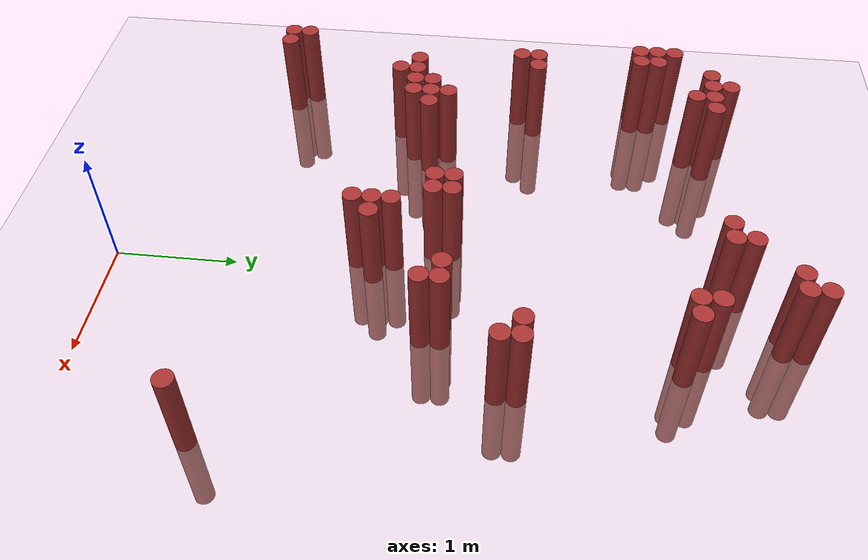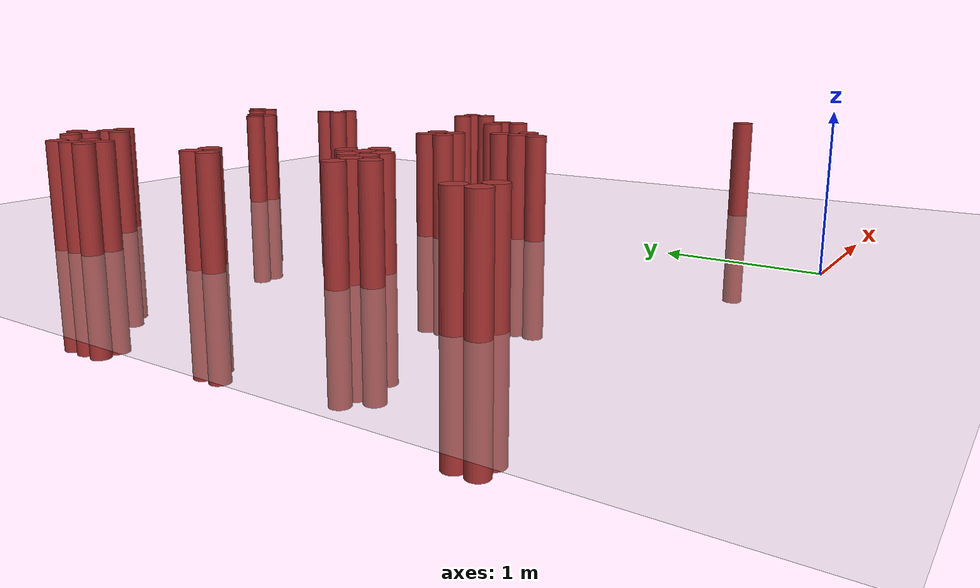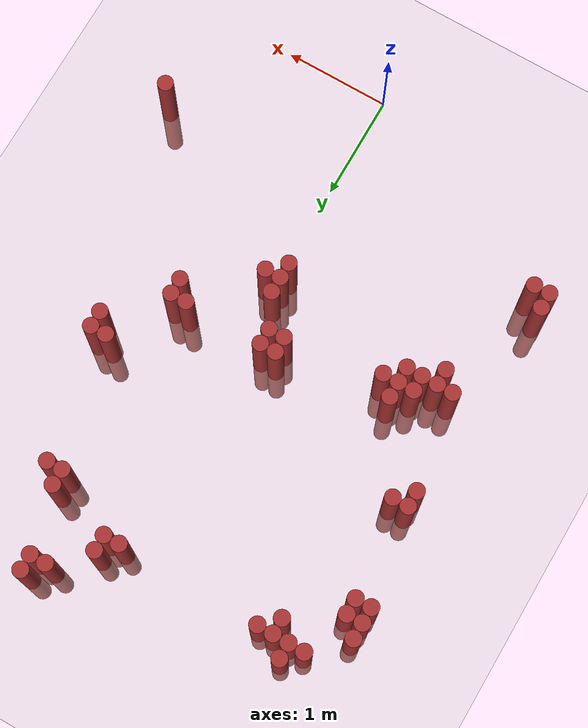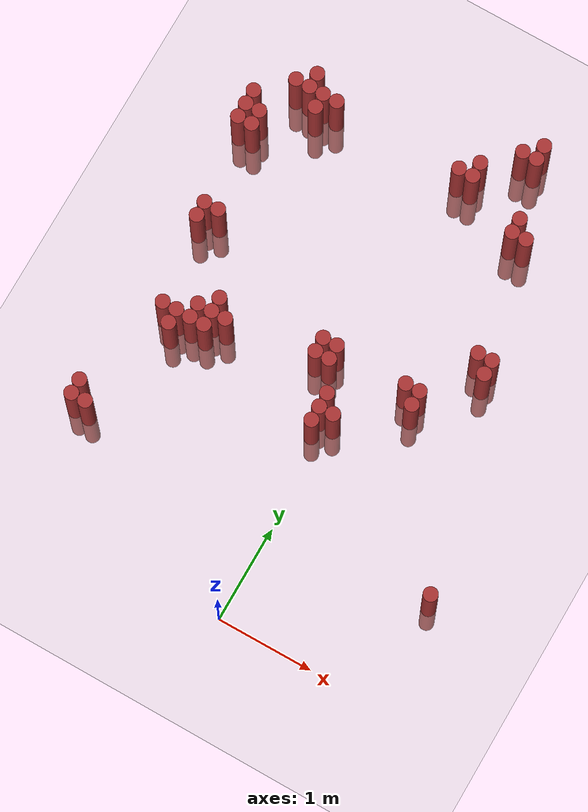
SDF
<sdf version="1.6">
 <world name="default">
  <model name="ground_plane">
   <static>1</static>
   <link name="link">
    <collision name="collision">
     <geometry><plane><normal>0 0 1</normal><size>100 100</size></plane></geometry>
     <surface><friction><ode><mu>100</mu><mu2>50</mu2></ode></friction></surface>
    </collision>
    <visual name="visual">
     <cast_shadows>0</cast_shadows>
     <geometry><plane><normal>0 0 1</normal><size>100 100</size></plane></geometry>
     <material>
      <script><uri>file://media/materials/scripts/gazebo.material</uri><name>Gazebo/Grey</name></script>
     </material>
    </visual>
   </link>
  </model>
  <model name="unit_cylinder_303">
   <static>1</static>
   <pose>-2.225000 1.075000 0.000000 0.000000 0.000000 0.000000</pose>
   <link name="link">
    <inertial>
     <mass>1</mass>
     <inertia><ixx>0.145833</ixx><ixy>0</ixy><ixz>0</ixz><iyy>0.145833</iyy><iyz>0</iyz><izz>0.125</izz></inertia>
    </inertial>
    <collision name="collision">
     <geometry><cylinder><radius>0.075000</radius><length>1.5</length></cylinder></geometry>
    </collision>
    <visual name="visual">
     <geometry><cylinder><radius>0.075000</radius><length>1.5</length></cylinder></geometry>
     <material>
      <ambient>0.648000 0.192000 0.192000 1</ambient>
      <diffuse>0.648000 0.192000 0.192000 1</diffuse>
     </material>
     <material>
      <script><name>Gazebo/Grey</name><uri>file://media/materials/scripts/gazebo.material</uri></script>
     </material>
    </visual>
   </link>
  </model>
  <model name="unit_cylinder_304">
   <static>1</static>
   <pose>-2.225000 1.225000 0.000000 0.000000 0.000000 0.000000</pose>
   <link name="link">
    <inertial>
     <mass>1</mass>
     <inertia><ixx>0.145833</ixx><ixy>0</ixy><ixz>0</ixz><iyy>0.145833</iyy><iyz>0</iyz><izz>0.125</izz></inertia>
    </inertial>
    <collision name="collision">
     <geometry><cylinder><radius>0.075000</radius><length>1.5</length></cylinder></geometry>
    </collision>
    <visual name="visual">
     <geometry><cylinder><radius>0.075000</radius><length>1.5</length></cylinder></geometry>
     <material>
      <ambient>0.648000 0.192000 0.192000 1</ambient>
      <diffuse>0.648000 0.192000 0.192000 1</diffuse>
     </material>
     <material>
      <script><name>Gazebo/Grey</name><uri>file://media/materials/scripts/gazebo.material</uri></script>
     </material>
    </visual>
   </link>
  </model>
  <model name="unit_cylinder_305">
   <static>1</static>
   <pose>-2.225000 4.225000 0.000000 0.000000 0.000000 0.000000</pose>
   <link name="link">
    <inertial>
     <mass>1</mass>
     <inertia><ixx>0.145833</ixx><ixy>0</ixy><ixz>0</ixz><iyy>0.145833</iyy><iyz>0</iyz><izz>0.125</izz></inertia>
    </inertial>
    <collision name="collision">
     <geometry><cylinder><radius>0.075000</radius><length>1.5</length></cylinder></geometry>
    </collision>
    <visual name="visual">
     <geometry><cylinder><radius>0.075000</radius><length>1.5</length></cylinder></geometry>
     <material>
      <ambient>0.648000 0.192000 0.192000 1</ambient>
      <diffuse>0.648000 0.192000 0.192000 1</diffuse>
     </material>
     <material>
      <script><name>Gazebo/Grey</name><uri>file://media/materials/scripts/gazebo.material</uri></script>
     </material>
    </visual>
   </link>
  </model>
  <model name="unit_cylinder_306">
   <static>1</static>
   <pose>-2.225000 4.375000 0.000000 0.000000 0.000000 0.000000</pose>
   <link name="link">
    <inertial>
     <mass>1</mass>
     <inertia><ixx>0.145833</ixx><ixy>0</ixy><ixz>0</ixz><iyy>0.145833</iyy><iyz>0</iyz><izz>0.125</izz></inertia>
    </inertial>
    <collision name="collision">
     <geometry><cylinder><radius>0.075000</radius><length>1.5</length></cylinder></geometry>
    </collision>
    <visual name="visual">
     <geometry><cylinder><radius>0.075000</radius><length>1.5</length></cylinder></geometry>
     <material>
      <ambient>0.648000 0.192000 0.192000 1</ambient>
      <diffuse>0.648000 0.192000 0.192000 1</diffuse>
     </material>
     <material>
      <script><name>Gazebo/Grey</name><uri>file://media/materials/scripts/gazebo.material</uri></script>
     </material>
    </visual>
   </link>
  </model>
  <model name="unit_cylinder_307">
   <static>1</static>
   <pose>-2.225000 4.525000 0.000000 0.000000 0.000000 0.000000</pose>
   <link name="link">
    <inertial>
     <mass>1</mass>
     <inertia><ixx>0.145833</ixx><ixy>0</ixy><ixz>0</ixz><iyy>0.145833</iyy><iyz>0</iyz><izz>0.125</izz></inertia>
    </inertial>
    <collision name="collision">
     <geometry><cylinder><radius>0.075000</radius><length>1.5</length></cylinder></geometry>
    </collision>
    <visual name="visual">
     <geometry><cylinder><radius>0.075000</radius><length>1.5</length></cylinder></geometry>
     <material>
      <ambient>0.648000 0.192000 0.192000 1</ambient>
      <diffuse>0.648000 0.192000 0.192000 1</diffuse>
     </material>
     <material>
      <script><name>Gazebo/Grey</name><uri>file://media/materials/scripts/gazebo.material</uri></script>
     </material>
    </visual>
   </link>
  </model>
  <model name="unit_cylinder_309">
   <static>1</static>
   <pose>-2.075000 1.075000 0.000000 0.000000 0.000000 0.000000</pose>
   <link name="link">
    <inertial>
     <mass>1</mass>
     <inertia><ixx>0.145833</ixx><ixy>0</ixy><ixz>0</ixz><iyy>0.145833</iyy><iyz>0</iyz><izz>0.125</izz></inertia>
    </inertial>
    <collision name="collision">
     <geometry><cylinder><radius>0.075000</radius><length>1.5</length></cylinder></geometry>
    </collision>
    <visual name="visual">
     <geometry><cylinder><radius>0.075000</radius><length>1.5</length></cylinder></geometry>
     <material>
      <ambient>0.648000 0.192000 0.192000 1</ambient>
      <diffuse>0.648000 0.192000 0.192000 1</diffuse>
     </material>
     <material>
      <script><name>Gazebo/Grey</name><uri>file://media/materials/scripts/gazebo.material</uri></script>
     </material>
    </visual>
   </link>
  </model>
  <model name="unit_cylinder_310">
   <static>1</static>
   <pose>-2.075000 3.175000 0.000000 0.000000 0.000000 0.000000</pose>
   <link name="link">
    <inertial>
     <mass>1</mass>
     <inertia><ixx>0.145833</ixx><ixy>0</ixy><ixz>0</ixz><iyy>0.145833</iyy><iyz>0</iyz><izz>0.125</izz></inertia>
    </inertial>
    <collision name="collision">
     <geometry><cylinder><radius>0.075000</radius><length>1.5</length></cylinder></geometry>
    </collision>
    <visual name="visual">
     <geometry><cylinder><radius>0.075000</radius><length>1.5</length></cylinder></geometry>
     <material>
      <ambient>0.648000 0.192000 0.192000 1</ambient>
      <diffuse>0.648000 0.192000 0.192000 1</diffuse>
     </material>
     <material>
      <script><name>Gazebo/Grey</name><uri>file://media/materials/scripts/gazebo.material</uri></script>
     </material>
    </visual>
   </link>
  </model>
  <model name="unit_cylinder_311">
   <static>1</static>
   <pose>-2.075000 3.325000 0.000000 0.000000 0.000000 0.000000</pose>
   <link name="link">
    <inertial>
     <mass>1</mass>
     <inertia><ixx>0.145833</ixx><ixy>0</ixy><ixz>0</ixz><iyy>0.145833</iyy><iyz>0</iyz><izz>0.125</izz></inertia>
    </inertial>
    <collision name="collision">
     <geometry><cylinder><radius>0.075000</radius><length>1.5</length></cylinder></geometry>
    </collision>
    <visual name="visual">
     <geometry><cylinder><radius>0.075000</radius><length>1.5</length></cylinder></geometry>
     <material>
      <ambient>0.648000 0.192000 0.192000 1</ambient>
      <diffuse>0.648000 0.192000 0.192000 1</diffuse>
     </material>
     <material>
      <script><name>Gazebo/Grey</name><uri>file://media/materials/scripts/gazebo.material</uri></script>
     </material>
    </visual>
   </link>
  </model>
  <model name="unit_cylinder_312">
   <static>1</static>
   <pose>-2.075000 4.225000 0.000000 0.000000 0.000000 0.000000</pose>
   <link name="link">
    <inertial>
     <mass>1</mass>
     <inertia><ixx>0.145833</ixx><ixy>0</ixy><ixz>0</ixz><iyy>0.145833</iyy><iyz>0</iyz><izz>0.125</izz></inertia>
    </inertial>
    <collision name="collision">
     <geometry><cylinder><radius>0.075000</radius><length>1.5</length></cylinder></geometry>
    </collision>
    <visual name="visual">
     <geometry><cylinder><radius>0.075000</radius><length>1.5</length></cylinder></geometry>
     <material>
      <ambient>0.648000 0.192000 0.192000 1</ambient>
      <diffuse>0.648000 0.192000 0.192000 1</diffuse>
     </material>
     <material>
      <script><name>Gazebo/Grey</name><uri>file://media/materials/scripts/gazebo.material</uri></script>
     </material>
    </visual>
   </link>
  </model>
  <model name="unit_cylinder_313">
   <static>1</static>
   <pose>-2.075000 4.375000 0.000000 0.000000 0.000000 0.000000</pose>
   <link name="link">
    <inertial>
     <mass>1</mass>
     <inertia><ixx>0.145833</ixx><ixy>0</ixy><ixz>0</ixz><iyy>0.145833</iyy><iyz>0</iyz><izz>0.125</izz></inertia>
    </inertial>
    <collision name="collision">
     <geometry><cylinder><radius>0.075000</radius><length>1.5</length></cylinder></geometry>
    </collision>
    <visual name="visual">
     <geometry><cylinder><radius>0.075000</radius><length>1.5</length></cylinder></geometry>
     <material>
      <ambient>0.648000 0.192000 0.192000 1</ambient>
      <diffuse>0.648000 0.192000 0.192000 1</diffuse>
     </material>
     <material>
      <script><name>Gazebo/Grey</name><uri>file://media/materials/scripts/gazebo.material</uri></script>
     </material>
    </visual>
   </link>
  </model>
  <model name="unit_cylinder_319">
   <static>1</static>
   <pose>-1.925000 2.275000 0.000000 0.000000 0.000000 0.000000</pose>
   <link name="link">
    <inertial>
     <mass>1</mass>
     <inertia><ixx>0.145833</ixx><ixy>0</ixy><ixz>0</ixz><iyy>0.145833</iyy><iyz>0</iyz><izz>0.125</izz></inertia>
    </inertial>
    <collision name="collision">
     <geometry><cylinder><radius>0.075000</radius><length>1.5</length></cylinder></geometry>
    </collision>
    <visual name="visual">
     <geometry><cylinder><radius>0.075000</radius><length>1.5</length></cylinder></geometry>
     <material>
      <ambient>0.648000 0.192000 0.192000 1</ambient>
      <diffuse>0.648000 0.192000 0.192000 1</diffuse>
     </material>
     <material>
      <script><name>Gazebo/Grey</name><uri>file://media/materials/scripts/gazebo.material</uri></script>
     </material>
    </visual>
   </link>
  </model>
  <model name="unit_cylinder_320">
   <static>1</static>
   <pose>-1.925000 3.325000 0.000000 0.000000 0.000000 0.000000</pose>
   <link name="link">
    <inertial>
     <mass>1</mass>
     <inertia><ixx>0.145833</ixx><ixy>0</ixy><ixz>0</ixz><iyy>0.145833</iyy><iyz>0</iyz><izz>0.125</izz></inertia>
    </inertial>
    <collision name="collision">
     <geometry><cylinder><radius>0.075000</radius><length>1.5</length></cylinder></geometry>
    </collision>
    <visual name="visual">
     <geometry><cylinder><radius>0.075000</radius><length>1.5</length></cylinder></geometry>
     <material>
      <ambient>0.648000 0.192000 0.192000 1</ambient>
      <diffuse>0.648000 0.192000 0.192000 1</diffuse>
     </material>
     <material>
      <script><name>Gazebo/Grey</name><uri>file://media/materials/scripts/gazebo.material</uri></script>
     </material>
    </visual>
   </link>
  </model>
  <model name="unit_cylinder_321">
   <static>1</static>
   <pose>-1.925000 4.825000 0.000000 0.000000 0.000000 0.000000</pose>
   <link name="link">
    <inertial>
     <mass>1</mass>
     <inertia><ixx>0.145833</ixx><ixy>0</ixy><ixz>0</ixz><iyy>0.145833</iyy><iyz>0</iyz><izz>0.125</izz></inertia>
    </inertial>
    <collision name="collision">
     <geometry><cylinder><radius>0.075000</radius><length>1.5</length></cylinder></geometry>
    </collision>
    <visual name="visual">
     <geometry><cylinder><radius>0.075000</radius><length>1.5</length></cylinder></geometry>
     <material>
      <ambient>0.648000 0.192000 0.192000 1</ambient>
      <diffuse>0.648000 0.192000 0.192000 1</diffuse>
     </material>
     <material>
      <script><name>Gazebo/Grey</name><uri>file://media/materials/scripts/gazebo.material</uri></script>
     </material>
    </visual>
   </link>
  </model>
  <model name="unit_cylinder_326">
   <static>1</static>
   <pose>-1.775000 2.125000 0.000000 0.000000 0.000000 0.000000</pose>
   <link name="link">
    <inertial>
     <mass>1</mass>
     <inertia><ixx>0.145833</ixx><ixy>0</ixy><ixz>0</ixz><iyy>0.145833</iyy><iyz>0</iyz><izz>0.125</izz></inertia>
    </inertial>
    <collision name="collision">
     <geometry><cylinder><radius>0.075000</radius><length>1.5</length></cylinder></geometry>
    </collision>
    <visual name="visual">
     <geometry><cylinder><radius>0.075000</radius><length>1.5</length></cylinder></geometry>
     <material>
      <ambient>0.648000 0.192000 0.192000 1</ambient>
      <diffuse>0.648000 0.192000 0.192000 1</diffuse>
     </material>
     <material>
      <script><name>Gazebo/Grey</name><uri>file://media/materials/scripts/gazebo.material</uri></script>
     </material>
    </visual>
   </link>
  </model>
  <model name="unit_cylinder_327">
   <static>1</static>
   <pose>-1.775000 2.275000 0.000000 0.000000 0.000000 0.000000</pose>
   <link name="link">
    <inertial>
     <mass>1</mass>
     <inertia><ixx>0.145833</ixx><ixy>0</ixy><ixz>0</ixz><iyy>0.145833</iyy><iyz>0</iyz><izz>0.125</izz></inertia>
    </inertial>
    <collision name="collision">
     <geometry><cylinder><radius>0.075000</radius><length>1.5</length></cylinder></geometry>
    </collision>
    <visual name="visual">
     <geometry><cylinder><radius>0.075000</radius><length>1.5</length></cylinder></geometry>
     <material>
      <ambient>0.648000 0.192000 0.192000 1</ambient>
      <diffuse>0.648000 0.192000 0.192000 1</diffuse>
     </material>
     <material>
      <script><name>Gazebo/Grey</name><uri>file://media/materials/scripts/gazebo.material</uri></script>
     </material>
    </visual>
   </link>
  </model>
  <model name="unit_cylinder_328">
   <static>1</static>
   <pose>-1.775000 4.825000 0.000000 0.000000 0.000000 0.000000</pose>
   <link name="link">
    <inertial>
     <mass>1</mass>
     <inertia><ixx>0.145833</ixx><ixy>0</ixy><ixz>0</ixz><iyy>0.145833</iyy><iyz>0</iyz><izz>0.125</izz></inertia>
    </inertial>
    <collision name="collision">
     <geometry><cylinder><radius>0.075000</radius><length>1.5</length></cylinder></geometry>
    </collision>
    <visual name="visual">
     <geometry><cylinder><radius>0.075000</radius><length>1.5</length></cylinder></geometry>
     <material>
      <ambient>0.648000 0.192000 0.192000 1</ambient>
      <diffuse>0.648000 0.192000 0.192000 1</diffuse>
     </material>
     <material>
      <script><name>Gazebo/Grey</name><uri>file://media/materials/scripts/gazebo.material</uri></script>
     </material>
    </visual>
   </link>
  </model>
  <model name="unit_cylinder_329">
   <static>1</static>
   <pose>-1.775000 4.975000 0.000000 0.000000 0.000000 0.000000</pose>
   <link name="link">
    <inertial>
     <mass>1</mass>
     <inertia><ixx>0.145833</ixx><ixy>0</ixy><ixz>0</ixz><iyy>0.145833</iyy><iyz>0</iyz><izz>0.125</izz></inertia>
    </inertial>
    <collision name="collision">
     <geometry><cylinder><radius>0.075000</radius><length>1.5</length></cylinder></geometry>
    </collision>
    <visual name="visual">
     <geometry><cylinder><radius>0.075000</radius><length>1.5</length></cylinder></geometry>
     <material>
      <ambient>0.648000 0.192000 0.192000 1</ambient>
      <diffuse>0.648000 0.192000 0.192000 1</diffuse>
     </material>
     <material>
      <script><name>Gazebo/Grey</name><uri>file://media/materials/scripts/gazebo.material</uri></script>
     </material>
    </visual>
   </link>
  </model>
  <model name="unit_cylinder_330">
   <static>1</static>
   <pose>-1.625000 2.275000 0.000000 0.000000 0.000000 0.000000</pose>
   <link name="link">
    <inertial>
     <mass>1</mass>
     <inertia><ixx>0.145833</ixx><ixy>0</ixy><ixz>0</ixz><iyy>0.145833</iyy><iyz>0</iyz><izz>0.125</izz></inertia>
    </inertial>
    <collision name="collision">
     <geometry><cylinder><radius>0.075000</radius><length>1.5</length></cylinder></geometry>
    </collision>
    <visual name="visual">
     <geometry><cylinder><radius>0.075000</radius><length>1.5</length></cylinder></geometry>
     <material>
      <ambient>0.648000 0.192000 0.192000 1</ambient>
      <diffuse>0.648000 0.192000 0.192000 1</diffuse>
     </material>
     <material>
      <script><name>Gazebo/Grey</name><uri>file://media/materials/scripts/gazebo.material</uri></script>
     </material>
    </visual>
   </link>
  </model>
  <model name="unit_cylinder_331">
   <static>1</static>
   <pose>-1.625000 2.425000 0.000000 0.000000 0.000000 0.000000</pose>
   <link name="link">
    <inertial>
     <mass>1</mass>
     <inertia><ixx>0.145833</ixx><ixy>0</ixy><ixz>0</ixz><iyy>0.145833</iyy><iyz>0</iyz><izz>0.125</izz></inertia>
    </inertial>
    <collision name="collision">
     <geometry><cylinder><radius>0.075000</radius><length>1.5</length></cylinder></geometry>
    </collision>
    <visual name="visual">
     <geometry><cylinder><radius>0.075000</radius><length>1.5</length></cylinder></geometry>
     <material>
      <ambient>0.648000 0.192000 0.192000 1</ambient>
      <diffuse>0.648000 0.192000 0.192000 1</diffuse>
     </material>
     <material>
      <script><name>Gazebo/Grey</name><uri>file://media/materials/scripts/gazebo.material</uri></script>
     </material>
    </visual>
   </link>
  </model>
  <model name="unit_cylinder_332">
   <static>1</static>
   <pose>-1.625000 4.675000 0.000000 0.000000 0.000000 0.000000</pose>
   <link name="link">
    <inertial>
     <mass>1</mass>
     <inertia><ixx>0.145833</ixx><ixy>0</ixy><ixz>0</ixz><iyy>0.145833</iyy><iyz>0</iyz><izz>0.125</izz></inertia>
    </inertial>
    <collision name="collision">
     <geometry><cylinder><radius>0.075000</radius><length>1.5</length></cylinder></geometry>
    </collision>
    <visual name="visual">
     <geometry><cylinder><radius>0.075000</radius><length>1.5</length></cylinder></geometry>
     <material>
      <ambient>0.648000 0.192000 0.192000 1</ambient>
      <diffuse>0.648000 0.192000 0.192000 1</diffuse>
     </material>
     <material>
      <script><name>Gazebo/Grey</name><uri>file://media/materials/scripts/gazebo.material</uri></script>
     </material>
    </visual>
   </link>
  </model>
  <model name="unit_cylinder_333">
   <static>1</static>
   <pose>-1.625000 4.825000 0.000000 0.000000 0.000000 0.000000</pose>
   <link name="link">
    <inertial>
     <mass>1</mass>
     <inertia><ixx>0.145833</ixx><ixy>0</ixy><ixz>0</ixz><iyy>0.145833</iyy><iyz>0</iyz><izz>0.125</izz></inertia>
    </inertial>
    <collision name="collision">
     <geometry><cylinder><radius>0.075000</radius><length>1.5</length></cylinder></geometry>
    </collision>
    <visual name="visual">
     <geometry><cylinder><radius>0.075000</radius><length>1.5</length></cylinder></geometry>
     <material>
      <ambient>0.648000 0.192000 0.192000 1</ambient>
      <diffuse>0.648000 0.192000 0.192000 1</diffuse>
     </material>
     <material>
      <script><name>Gazebo/Grey</name><uri>file://media/materials/scripts/gazebo.material</uri></script>
     </material>
    </visual>
   </link>
  </model>
  <model name="unit_cylinder_334">
   <static>1</static>
   <pose>-1.475000 2.275000 0.000000 0.000000 0.000000 0.000000</pose>
   <link name="link">
    <inertial>
     <mass>1</mass>
     <inertia><ixx>0.145833</ixx><ixy>0</ixy><ixz>0</ixz><iyy>0.145833</iyy><iyz>0</iyz><izz>0.125</izz></inertia>
    </inertial>
    <collision name="collision">
     <geometry><cylinder><radius>0.075000</radius><length>1.5</length></cylinder></geometry>
    </collision>
    <visual name="visual">
     <geometry><cylinder><radius>0.075000</radius><length>1.5</length></cylinder></geometry>
     <material>
      <ambient>0.648000 0.192000 0.192000 1</ambient>
      <diffuse>0.648000 0.192000 0.192000 1</diffuse>
     </material>
     <material>
      <script><name>Gazebo/Grey</name><uri>file://media/materials/scripts/gazebo.material</uri></script>
     </material>
    </visual>
   </link>
  </model>
  <model name="unit_cylinder_335">
   <static>1</static>
   <pose>-1.475000 2.425000 0.000000 0.000000 0.000000 0.000000</pose>
   <link name="link">
    <inertial>
     <mass>1</mass>
     <inertia><ixx>0.145833</ixx><ixy>0</ixy><ixz>0</ixz><iyy>0.145833</iyy><iyz>0</iyz><izz>0.125</izz></inertia>
    </inertial>
    <collision name="collision">
     <geometry><cylinder><radius>0.075000</radius><length>1.5</length></cylinder></geometry>
    </collision>
    <visual name="visual">
     <geometry><cylinder><radius>0.075000</radius><length>1.5</length></cylinder></geometry>
     <material>
      <ambient>0.648000 0.192000 0.192000 1</ambient>
      <diffuse>0.648000 0.192000 0.192000 1</diffuse>
     </material>
     <material>
      <script><name>Gazebo/Grey</name><uri>file://media/materials/scripts/gazebo.material</uri></script>
     </material>
    </visual>
   </link>
  </model>
  <model name="unit_cylinder_336">
   <static>1</static>
   <pose>-1.475000 2.575000 0.000000 0.000000 0.000000 0.000000</pose>
   <link name="link">
    <inertial>
     <mass>1</mass>
     <inertia><ixx>0.145833</ixx><ixy>0</ixy><ixz>0</ixz><iyy>0.145833</iyy><iyz>0</iyz><izz>0.125</izz></inertia>
    </inertial>
    <collision name="collision">
     <geometry><cylinder><radius>0.075000</radius><length>1.5</length></cylinder></geometry>
    </collision>
    <visual name="visual">
     <geometry><cylinder><radius>0.075000</radius><length>1.5</length></cylinder></geometry>
     <material>
      <ambient>0.648000 0.192000 0.192000 1</ambient>
      <diffuse>0.648000 0.192000 0.192000 1</diffuse>
     </material>
     <material>
      <script><name>Gazebo/Grey</name><uri>file://media/materials/scripts/gazebo.material</uri></script>
     </material>
    </visual>
   </link>
  </model>
  <model name="unit_cylinder_337">
   <static>1</static>
   <pose>-1.475000 4.825000 0.000000 0.000000 0.000000 0.000000</pose>
   <link name="link">
    <inertial>
     <mass>1</mass>
     <inertia><ixx>0.145833</ixx><ixy>0</ixy><ixz>0</ixz><iyy>0.145833</iyy><iyz>0</iyz><izz>0.125</izz></inertia>
    </inertial>
    <collision name="collision">
     <geometry><cylinder><radius>0.075000</radius><length>1.5</length></cylinder></geometry>
    </collision>
    <visual name="visual">
     <geometry><cylinder><radius>0.075000</radius><length>1.5</length></cylinder></geometry>
     <material>
      <ambient>0.648000 0.192000 0.192000 1</ambient>
      <diffuse>0.648000 0.192000 0.192000 1</diffuse>
     </material>
     <material>
      <script><name>Gazebo/Grey</name><uri>file://media/materials/scripts/gazebo.material</uri></script>
     </material>
    </visual>
   </link>
  </model>
  <model name="unit_cylinder_339">
   <static>1</static>
   <pose>-1.325000 2.425000 0.000000 0.000000 0.000000 0.000000</pose>
   <link name="link">
    <inertial>
     <mass>1</mass>
     <inertia><ixx>0.145833</ixx><ixy>0</ixy><ixz>0</ixz><iyy>0.145833</iyy><iyz>0</iyz><izz>0.125</izz></inertia>
    </inertial>
    <collision name="collision">
     <geometry><cylinder><radius>0.075000</radius><length>1.5</length></cylinder></geometry>
    </collision>
    <visual name="visual">
     <geometry><cylinder><radius>0.075000</radius><length>1.5</length></cylinder></geometry>
     <material>
      <ambient>0.648000 0.192000 0.192000 1</ambient>
      <diffuse>0.648000 0.192000 0.192000 1</diffuse>
     </material>
     <material>
      <script><name>Gazebo/Grey</name><uri>file://media/materials/scripts/gazebo.material</uri></script>
     </material>
    </visual>
   </link>
  </model>
  <model name="unit_cylinder_348">
   <static>1</static>
   <pose>-0.425000 2.575000 0.000000 0.000000 0.000000 0.000000</pose>
   <link name="link">
    <inertial>
     <mass>1</mass>
     <inertia><ixx>0.145833</ixx><ixy>0</ixy><ixz>0</ixz><iyy>0.145833</iyy><iyz>0</iyz><izz>0.125</izz></inertia>
    </inertial>
    <collision name="collision">
     <geometry><cylinder><radius>0.075000</radius><length>1.5</length></cylinder></geometry>
    </collision>
    <visual name="visual">
     <geometry><cylinder><radius>0.075000</radius><length>1.5</length></cylinder></geometry>
     <material>
      <ambient>0.648000 0.192000 0.192000 1</ambient>
      <diffuse>0.648000 0.192000 0.192000 1</diffuse>
     </material>
     <material>
      <script><name>Gazebo/Grey</name><uri>file://media/materials/scripts/gazebo.material</uri></script>
     </material>
    </visual>
   </link>
  </model>
  <model name="unit_cylinder_349">
   <static>1</static>
   <pose>-0.425000 2.725000 0.000000 0.000000 0.000000 0.000000</pose>
   <link name="link">
    <inertial>
     <mass>1</mass>
     <inertia><ixx>0.145833</ixx><ixy>0</ixy><ixz>0</ixz><iyy>0.145833</iyy><iyz>0</iyz><izz>0.125</izz></inertia>
    </inertial>
    <collision name="collision">
     <geometry><cylinder><radius>0.075000</radius><length>1.5</length></cylinder></geometry>
    </collision>
    <visual name="visual">
     <geometry><cylinder><radius>0.075000</radius><length>1.5</length></cylinder></geometry>
     <material>
      <ambient>0.648000 0.192000 0.192000 1</ambient>
      <diffuse>0.648000 0.192000 0.192000 1</diffuse>
     </material>
     <material>
      <script><name>Gazebo/Grey</name><uri>file://media/materials/scripts/gazebo.material</uri></script>
     </material>
    </visual>
   </link>
  </model>
  <model name="unit_cylinder_351">
   <static>1</static>
   <pose>-0.275000 2.575000 0.000000 0.000000 0.000000 0.000000</pose>
   <link name="link">
    <inertial>
     <mass>1</mass>
     <inertia><ixx>0.145833</ixx><ixy>0</ixy><ixz>0</ixz><iyy>0.145833</iyy><iyz>0</iyz><izz>0.125</izz></inertia>
    </inertial>
    <collision name="collision">
     <geometry><cylinder><radius>0.075000</radius><length>1.5</length></cylinder></geometry>
    </collision>
    <visual name="visual">
     <geometry><cylinder><radius>0.075000</radius><length>1.5</length></cylinder></geometry>
     <material>
      <ambient>0.648000 0.192000 0.192000 1</ambient>
      <diffuse>0.648000 0.192000 0.192000 1</diffuse>
     </material>
     <material>
      <script><name>Gazebo/Grey</name><uri>file://media/materials/scripts/gazebo.material</uri></script>
     </material>
    </visual>
   </link>
  </model>
  <model name="unit_cylinder_352">
   <static>1</static>
   <pose>-0.275000 2.725000 0.000000 0.000000 0.000000 0.000000</pose>
   <link name="link">
    <inertial>
     <mass>1</mass>
     <inertia><ixx>0.145833</ixx><ixy>0</ixy><ixz>0</ixz><iyy>0.145833</iyy><iyz>0</iyz><izz>0.125</izz></inertia>
    </inertial>
    <collision name="collision">
     <geometry><cylinder><radius>0.075000</radius><length>1.5</length></cylinder></geometry>
    </collision>
    <visual name="visual">
     <geometry><cylinder><radius>0.075000</radius><length>1.5</length></cylinder></geometry>
     <material>
      <ambient>0.648000 0.192000 0.192000 1</ambient>
      <diffuse>0.648000 0.192000 0.192000 1</diffuse>
     </material>
     <material>
      <script><name>Gazebo/Grey</name><uri>file://media/materials/scripts/gazebo.material</uri></script>
     </material>
    </visual>
   </link>
  </model>
  <model name="unit_cylinder_355">
   <static>1</static>
   <pose>-0.125000 1.975000 0.000000 0.000000 0.000000 0.000000</pose>
   <link name="link">
    <inertial>
     <mass>1</mass>
     <inertia><ixx>0.145833</ixx><ixy>0</ixy><ixz>0</ixz><iyy>0.145833</iyy><iyz>0</iyz><izz>0.125</izz></inertia>
    </inertial>
    <collision name="collision">
     <geometry><cylinder><radius>0.075000</radius><length>1.5</length></cylinder></geometry>
    </collision>
    <visual name="visual">
     <geometry><cylinder><radius>0.075000</radius><length>1.5</length></cylinder></geometry>
     <material>
      <ambient>0.648000 0.192000 0.192000 1</ambient>
      <diffuse>0.648000 0.192000 0.192000 1</diffuse>
     </material>
     <material>
      <script><name>Gazebo/Grey</name><uri>file://media/materials/scripts/gazebo.material</uri></script>
     </material>
    </visual>
   </link>
  </model>
  <model name="unit_cylinder_356">
   <static>1</static>
   <pose>-0.125000 2.125000 0.000000 0.000000 0.000000 0.000000</pose>
   <link name="link">
    <inertial>
     <mass>1</mass>
     <inertia><ixx>0.145833</ixx><ixy>0</ixy><ixz>0</ixz><iyy>0.145833</iyy><iyz>0</iyz><izz>0.125</izz></inertia>
    </inertial>
    <collision name="collision">
     <geometry><cylinder><radius>0.075000</radius><length>1.5</length></cylinder></geometry>
    </collision>
    <visual name="visual">
     <geometry><cylinder><radius>0.075000</radius><length>1.5</length></cylinder></geometry>
     <material>
      <ambient>0.648000 0.192000 0.192000 1</ambient>
      <diffuse>0.648000 0.192000 0.192000 1</diffuse>
     </material>
     <material>
      <script><name>Gazebo/Grey</name><uri>file://media/materials/scripts/gazebo.material</uri></script>
     </material>
    </visual>
   </link>
  </model>
  <model name="unit_cylinder_357">
   <static>1</static>
   <pose>-0.125000 2.275000 0.000000 0.000000 0.000000 0.000000</pose>
   <link name="link">
    <inertial>
     <mass>1</mass>
     <inertia><ixx>0.145833</ixx><ixy>0</ixy><ixz>0</ixz><iyy>0.145833</iyy><iyz>0</iyz><izz>0.125</izz></inertia>
    </inertial>
    <collision name="collision">
     <geometry><cylinder><radius>0.075000</radius><length>1.5</length></cylinder></geometry>
    </collision>
    <visual name="visual">
     <geometry><cylinder><radius>0.075000</radius><length>1.5</length></cylinder></geometry>
     <material>
      <ambient>0.648000 0.192000 0.192000 1</ambient>
      <diffuse>0.648000 0.192000 0.192000 1</diffuse>
     </material>
     <material>
      <script><name>Gazebo/Grey</name><uri>file://media/materials/scripts/gazebo.material</uri></script>
     </material>
    </visual>
   </link>
  </model>
  <model name="unit_cylinder_358">
   <static>1</static>
   <pose>-0.125000 4.825000 0.000000 0.000000 0.000000 0.000000</pose>
   <link name="link">
    <inertial>
     <mass>1</mass>
     <inertia><ixx>0.145833</ixx><ixy>0</ixy><ixz>0</ixz><iyy>0.145833</iyy><iyz>0</iyz><izz>0.125</izz></inertia>
    </inertial>
    <collision name="collision">
     <geometry><cylinder><radius>0.075000</radius><length>1.5</length></cylinder></geometry>
    </collision>
    <visual name="visual">
     <geometry><cylinder><radius>0.075000</radius><length>1.5</length></cylinder></geometry>
     <material>
      <ambient>0.648000 0.192000 0.192000 1</ambient>
      <diffuse>0.648000 0.192000 0.192000 1</diffuse>
     </material>
     <material>
      <script><name>Gazebo/Grey</name><uri>file://media/materials/scripts/gazebo.material</uri></script>
     </material>
    </visual>
   </link>
  </model>
  <model name="unit_cylinder_361">
   <static>1</static>
   <pose>0.025000 2.125000 0.000000 0.000000 0.000000 0.000000</pose>
   <link name="link">
    <inertial>
     <mass>1</mass>
     <inertia><ixx>0.145833</ixx><ixy>0</ixy><ixz>0</ixz><iyy>0.145833</iyy><iyz>0</iyz><izz>0.125</izz></inertia>
    </inertial>
    <collision name="collision">
     <geometry><cylinder><radius>0.075000</radius><length>1.5</length></cylinder></geometry>
    </collision>
    <visual name="visual">
     <geometry><cylinder><radius>0.075000</radius><length>1.5</length></cylinder></geometry>
     <material>
      <ambient>0.648000 0.192000 0.192000 1</ambient>
      <diffuse>0.648000 0.192000 0.192000 1</diffuse>
     </material>
     <material>
      <script><name>Gazebo/Grey</name><uri>file://media/materials/scripts/gazebo.material</uri></script>
     </material>
    </visual>
   </link>
  </model>
  <model name="unit_cylinder_362">
   <static>1</static>
   <pose>0.025000 4.825000 0.000000 0.000000 0.000000 0.000000</pose>
   <link name="link">
    <inertial>
     <mass>1</mass>
     <inertia><ixx>0.145833</ixx><ixy>0</ixy><ixz>0</ixz><iyy>0.145833</iyy><iyz>0</iyz><izz>0.125</izz></inertia>
    </inertial>
    <collision name="collision">
     <geometry><cylinder><radius>0.075000</radius><length>1.5</length></cylinder></geometry>
    </collision>
    <visual name="visual">
     <geometry><cylinder><radius>0.075000</radius><length>1.5</length></cylinder></geometry>
     <material>
      <ambient>0.648000 0.192000 0.192000 1</ambient>
      <diffuse>0.648000 0.192000 0.192000 1</diffuse>
     </material>
     <material>
      <script><name>Gazebo/Grey</name><uri>file://media/materials/scripts/gazebo.material</uri></script>
     </material>
    </visual>
   </link>
  </model>
  <model name="unit_cylinder_363">
   <static>1</static>
   <pose>0.025000 4.975000 0.000000 0.000000 0.000000 0.000000</pose>
   <link name="link">
    <inertial>
     <mass>1</mass>
     <inertia><ixx>0.145833</ixx><ixy>0</ixy><ixz>0</ixz><iyy>0.145833</iyy><iyz>0</iyz><izz>0.125</izz></inertia>
    </inertial>
    <collision name="collision">
     <geometry><cylinder><radius>0.075000</radius><length>1.5</length></cylinder></geometry>
    </collision>
    <visual name="visual">
     <geometry><cylinder><radius>0.075000</radius><length>1.5</length></cylinder></geometry>
     <material>
      <ambient>0.648000 0.192000 0.192000 1</ambient>
      <diffuse>0.648000 0.192000 0.192000 1</diffuse>
     </material>
     <material>
      <script><name>Gazebo/Grey</name><uri>file://media/materials/scripts/gazebo.material</uri></script>
     </material>
    </visual>
   </link>
  </model>
  <model name="unit_cylinder_364">
   <static>1</static>
   <pose>0.325000 5.275000 0.000000 0.000000 0.000000 0.000000</pose>
   <link name="link">
    <inertial>
     <mass>1</mass>
     <inertia><ixx>0.145833</ixx><ixy>0</ixy><ixz>0</ixz><iyy>0.145833</iyy><iyz>0</iyz><izz>0.125</izz></inertia>
    </inertial>
    <collision name="collision">
     <geometry><cylinder><radius>0.075000</radius><length>1.5</length></cylinder></geometry>
    </collision>
    <visual name="visual">
     <geometry><cylinder><radius>0.075000</radius><length>1.5</length></cylinder></geometry>
     <material>
      <ambient>0.648000 0.192000 0.192000 1</ambient>
      <diffuse>0.648000 0.192000 0.192000 1</diffuse>
     </material>
     <material>
      <script><name>Gazebo/Grey</name><uri>file://media/materials/scripts/gazebo.material</uri></script>
     </material>
    </visual>
   </link>
  </model>
  <model name="unit_cylinder_367">
   <static>1</static>
   <pose>0.475000 2.725000 0.000000 0.000000 0.000000 0.000000</pose>
   <link name="link">
    <inertial>
     <mass>1</mass>
     <inertia><ixx>0.145833</ixx><ixy>0</ixy><ixz>0</ixz><iyy>0.145833</iyy><iyz>0</iyz><izz>0.125</izz></inertia>
    </inertial>
    <collision name="collision">
     <geometry><cylinder><radius>0.075000</radius><length>1.5</length></cylinder></geometry>
    </collision>
    <visual name="visual">
     <geometry><cylinder><radius>0.075000</radius><length>1.5</length></cylinder></geometry>
     <material>
      <ambient>0.648000 0.192000 0.192000 1</ambient>
      <diffuse>0.648000 0.192000 0.192000 1</diffuse>
     </material>
     <material>
      <script><name>Gazebo/Grey</name><uri>file://media/materials/scripts/gazebo.material</uri></script>
     </material>
    </visual>
   </link>
  </model>
  <model name="unit_cylinder_368">
   <static>1</static>
   <pose>0.475000 5.275000 0.000000 0.000000 0.000000 0.000000</pose>
   <link name="link">
    <inertial>
     <mass>1</mass>
     <inertia><ixx>0.145833</ixx><ixy>0</ixy><ixz>0</ixz><iyy>0.145833</iyy><iyz>0</iyz><izz>0.125</izz></inertia>
    </inertial>
    <collision name="collision">
     <geometry><cylinder><radius>0.075000</radius><length>1.5</length></cylinder></geometry>
    </collision>
    <visual name="visual">
     <geometry><cylinder><radius>0.075000</radius><length>1.5</length></cylinder></geometry>
     <material>
      <ambient>0.648000 0.192000 0.192000 1</ambient>
      <diffuse>0.648000 0.192000 0.192000 1</diffuse>
     </material>
     <material>
      <script><name>Gazebo/Grey</name><uri>file://media/materials/scripts/gazebo.material</uri></script>
     </material>
    </visual>
   </link>
  </model>
  <model name="unit_cylinder_369">
   <static>1</static>
   <pose>0.475000 5.425000 0.000000 0.000000 0.000000 0.000000</pose>
   <link name="link">
    <inertial>
     <mass>1</mass>
     <inertia><ixx>0.145833</ixx><ixy>0</ixy><ixz>0</ixz><iyy>0.145833</iyy><iyz>0</iyz><izz>0.125</izz></inertia>
    </inertial>
    <collision name="collision">
     <geometry><cylinder><radius>0.075000</radius><length>1.5</length></cylinder></geometry>
    </collision>
    <visual name="visual">
     <geometry><cylinder><radius>0.075000</radius><length>1.5</length></cylinder></geometry>
     <material>
      <ambient>0.648000 0.192000 0.192000 1</ambient>
      <diffuse>0.648000 0.192000 0.192000 1</diffuse>
     </material>
     <material>
      <script><name>Gazebo/Grey</name><uri>file://media/materials/scripts/gazebo.material</uri></script>
     </material>
    </visual>
   </link>
  </model>
  <model name="unit_cylinder_371">
   <static>1</static>
   <pose>0.625000 2.575000 0.000000 0.000000 0.000000 0.000000</pose>
   <link name="link">
    <inertial>
     <mass>1</mass>
     <inertia><ixx>0.145833</ixx><ixy>0</ixy><ixz>0</ixz><iyy>0.145833</iyy><iyz>0</iyz><izz>0.125</izz></inertia>
    </inertial>
    <collision name="collision">
     <geometry><cylinder><radius>0.075000</radius><length>1.5</length></cylinder></geometry>
    </collision>
    <visual name="visual">
     <geometry><cylinder><radius>0.075000</radius><length>1.5</length></cylinder></geometry>
     <material>
      <ambient>0.648000 0.192000 0.192000 1</ambient>
      <diffuse>0.648000 0.192000 0.192000 1</diffuse>
     </material>
     <material>
      <script><name>Gazebo/Grey</name><uri>file://media/materials/scripts/gazebo.material</uri></script>
     </material>
    </visual>
   </link>
  </model>
  <model name="unit_cylinder_372">
   <static>1</static>
   <pose>0.625000 2.725000 0.000000 0.000000 0.000000 0.000000</pose>
   <link name="link">
    <inertial>
     <mass>1</mass>
     <inertia><ixx>0.145833</ixx><ixy>0</ixy><ixz>0</ixz><iyy>0.145833</iyy><iyz>0</iyz><izz>0.125</izz></inertia>
    </inertial>
    <collision name="collision">
     <geometry><cylinder><radius>0.075000</radius><length>1.5</length></cylinder></geometry>
    </collision>
    <visual name="visual">
     <geometry><cylinder><radius>0.075000</radius><length>1.5</length></cylinder></geometry>
     <material>
      <ambient>0.648000 0.192000 0.192000 1</ambient>
      <diffuse>0.648000 0.192000 0.192000 1</diffuse>
     </material>
     <material>
      <script><name>Gazebo/Grey</name><uri>file://media/materials/scripts/gazebo.material</uri></script>
     </material>
    </visual>
   </link>
  </model>
  <model name="unit_cylinder_373">
   <static>1</static>
   <pose>0.625000 4.525000 0.000000 0.000000 0.000000 0.000000</pose>
   <link name="link">
    <inertial>
     <mass>1</mass>
     <inertia><ixx>0.145833</ixx><ixy>0</ixy><ixz>0</ixz><iyy>0.145833</iyy><iyz>0</iyz><izz>0.125</izz></inertia>
    </inertial>
    <collision name="collision">
     <geometry><cylinder><radius>0.075000</radius><length>1.5</length></cylinder></geometry>
    </collision>
    <visual name="visual">
     <geometry><cylinder><radius>0.075000</radius><length>1.5</length></cylinder></geometry>
     <material>
      <ambient>0.648000 0.192000 0.192000 1</ambient>
      <diffuse>0.648000 0.192000 0.192000 1</diffuse>
     </material>
     <material>
      <script><name>Gazebo/Grey</name><uri>file://media/materials/scripts/gazebo.material</uri></script>
     </material>
    </visual>
   </link>
  </model>
  <model name="unit_cylinder_374">
   <static>1</static>
   <pose>0.625000 4.675000 0.000000 0.000000 0.000000 0.000000</pose>
   <link name="link">
    <inertial>
     <mass>1</mass>
     <inertia><ixx>0.145833</ixx><ixy>0</ixy><ixz>0</ixz><iyy>0.145833</iyy><iyz>0</iyz><izz>0.125</izz></inertia>
    </inertial>
    <collision name="collision">
     <geometry><cylinder><radius>0.075000</radius><length>1.5</length></cylinder></geometry>
    </collision>
    <visual name="visual">
     <geometry><cylinder><radius>0.075000</radius><length>1.5</length></cylinder></geometry>
     <material>
      <ambient>0.648000 0.192000 0.192000 1</ambient>
      <diffuse>0.648000 0.192000 0.192000 1</diffuse>
     </material>
     <material>
      <script><name>Gazebo/Grey</name><uri>file://media/materials/scripts/gazebo.material</uri></script>
     </material>
    </visual>
   </link>
  </model>
  <model name="unit_cylinder_377">
   <static>1</static>
   <pose>0.775000 4.525000 0.000000 0.000000 0.000000 0.000000</pose>
   <link name="link">
    <inertial>
     <mass>1</mass>
     <inertia><ixx>0.145833</ixx><ixy>0</ixy><ixz>0</ixz><iyy>0.145833</iyy><iyz>0</iyz><izz>0.125</izz></inertia>
    </inertial>
    <collision name="collision">
     <geometry><cylinder><radius>0.075000</radius><length>1.5</length></cylinder></geometry>
    </collision>
    <visual name="visual">
     <geometry><cylinder><radius>0.075000</radius><length>1.5</length></cylinder></geometry>
     <material>
      <ambient>0.648000 0.192000 0.192000 1</ambient>
      <diffuse>0.648000 0.192000 0.192000 1</diffuse>
     </material>
     <material>
      <script><name>Gazebo/Grey</name><uri>file://media/materials/scripts/gazebo.material</uri></script>
     </material>
    </visual>
   </link>
  </model>
  <model name="unit_cylinder_380">
   <static>1</static>
   <pose>0.925000 3.325000 0.000000 0.000000 0.000000 0.000000</pose>
   <link name="link">
    <inertial>
     <mass>1</mass>
     <inertia><ixx>0.145833</ixx><ixy>0</ixy><ixz>0</ixz><iyy>0.145833</iyy><iyz>0</iyz><izz>0.125</izz></inertia>
    </inertial>
    <collision name="collision">
     <geometry><cylinder><radius>0.075000</radius><length>1.5</length></cylinder></geometry>
    </collision>
    <visual name="visual">
     <geometry><cylinder><radius>0.075000</radius><length>1.5</length></cylinder></geometry>
     <material>
      <ambient>0.648000 0.192000 0.192000 1</ambient>
      <diffuse>0.648000 0.192000 0.192000 1</diffuse>
     </material>
     <material>
      <script><name>Gazebo/Grey</name><uri>file://media/materials/scripts/gazebo.material</uri></script>
     </material>
    </visual>
   </link>
  </model>
  <model name="unit_cylinder_381">
   <static>1</static>
   <pose>1.075000 3.175000 0.000000 0.000000 0.000000 0.000000</pose>
   <link name="link">
    <inertial>
     <mass>1</mass>
     <inertia><ixx>0.145833</ixx><ixy>0</ixy><ixz>0</ixz><iyy>0.145833</iyy><iyz>0</iyz><izz>0.125</izz></inertia>
    </inertial>
    <collision name="collision">
     <geometry><cylinder><radius>0.075000</radius><length>1.5</length></cylinder></geometry>
    </collision>
    <visual name="visual">
     <geometry><cylinder><radius>0.075000</radius><length>1.5</length></cylinder></geometry>
     <material>
      <ambient>0.648000 0.192000 0.192000 1</ambient>
      <diffuse>0.648000 0.192000 0.192000 1</diffuse>
     </material>
     <material>
      <script><name>Gazebo/Grey</name><uri>file://media/materials/scripts/gazebo.material</uri></script>
     </material>
    </visual>
   </link>
  </model>
  <model name="unit_cylinder_382">
   <static>1</static>
   <pose>1.075000 3.325000 0.000000 0.000000 0.000000 0.000000</pose>
   <link name="link">
    <inertial>
     <mass>1</mass>
     <inertia><ixx>0.145833</ixx><ixy>0</ixy><ixz>0</ixz><iyy>0.145833</iyy><iyz>0</iyz><izz>0.125</izz></inertia>
    </inertial>
    <collision name="collision">
     <geometry><cylinder><radius>0.075000</radius><length>1.5</length></cylinder></geometry>
    </collision>
    <visual name="visual">
     <geometry><cylinder><radius>0.075000</radius><length>1.5</length></cylinder></geometry>
     <material>
      <ambient>0.648000 0.192000 0.192000 1</ambient>
      <diffuse>0.648000 0.192000 0.192000 1</diffuse>
     </material>
     <material>
      <script><name>Gazebo/Grey</name><uri>file://media/materials/scripts/gazebo.material</uri></script>
     </material>
    </visual>
   </link>
  </model>
  <model name="unit_cylinder_391">
   <static>1</static>
   <pose>1.675000 1.075000 0.000000 0.000000 0.000000 0.000000</pose>
   <link name="link">
    <inertial>
     <mass>1</mass>
     <inertia><ixx>0.145833</ixx><ixy>0</ixy><ixz>0</ixz><iyy>0.145833</iyy><iyz>0</iyz><izz>0.125</izz></inertia>
    </inertial>
    <collision name="collision">
     <geometry><cylinder><radius>0.075000</radius><length>1.5</length></cylinder></geometry>
    </collision>
    <visual name="visual">
     <geometry><cylinder><radius>0.075000</radius><length>1.5</length></cylinder></geometry>
     <material>
      <ambient>0.648000 0.192000 0.192000 1</ambient>
      <diffuse>0.648000 0.192000 0.192000 1</diffuse>
     </material>
     <material>
      <script><name>Gazebo/Grey</name><uri>file://media/materials/scripts/gazebo.material</uri></script>
     </material>
    </visual>
   </link>
  </model>
 </world>
</sdf>
